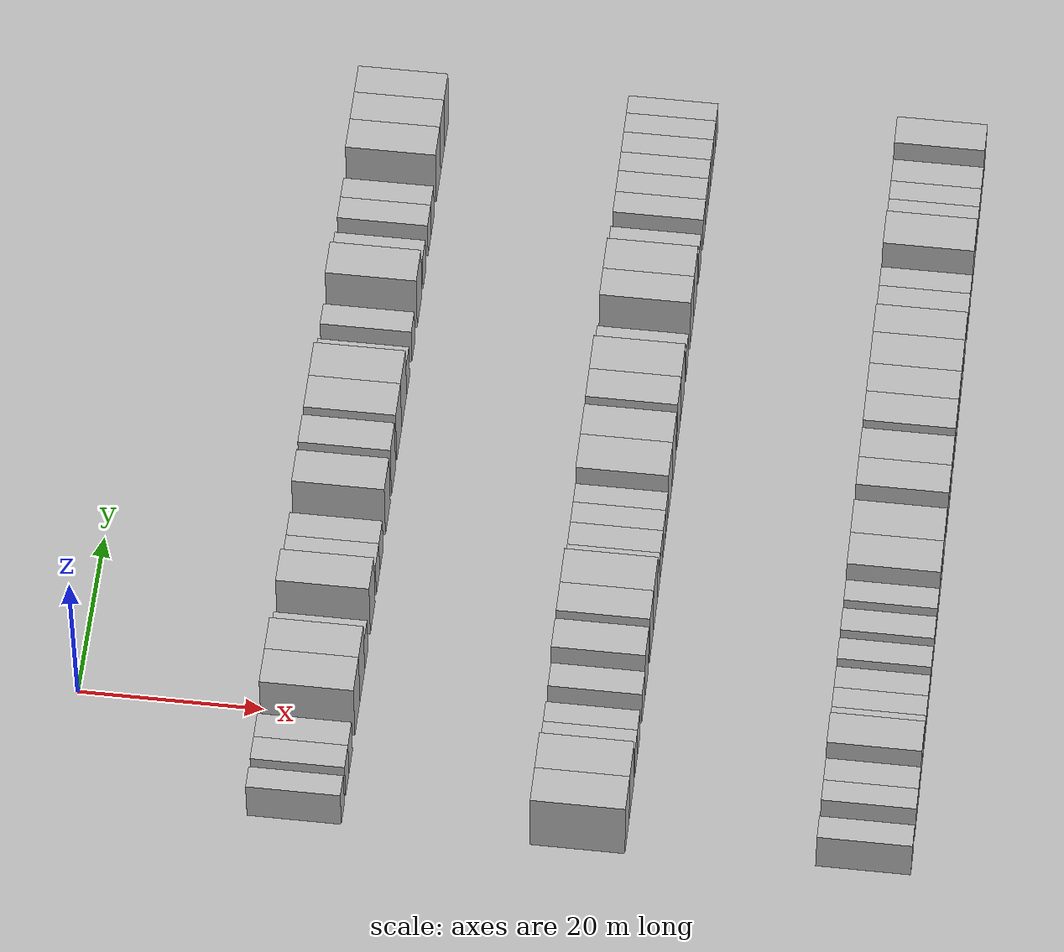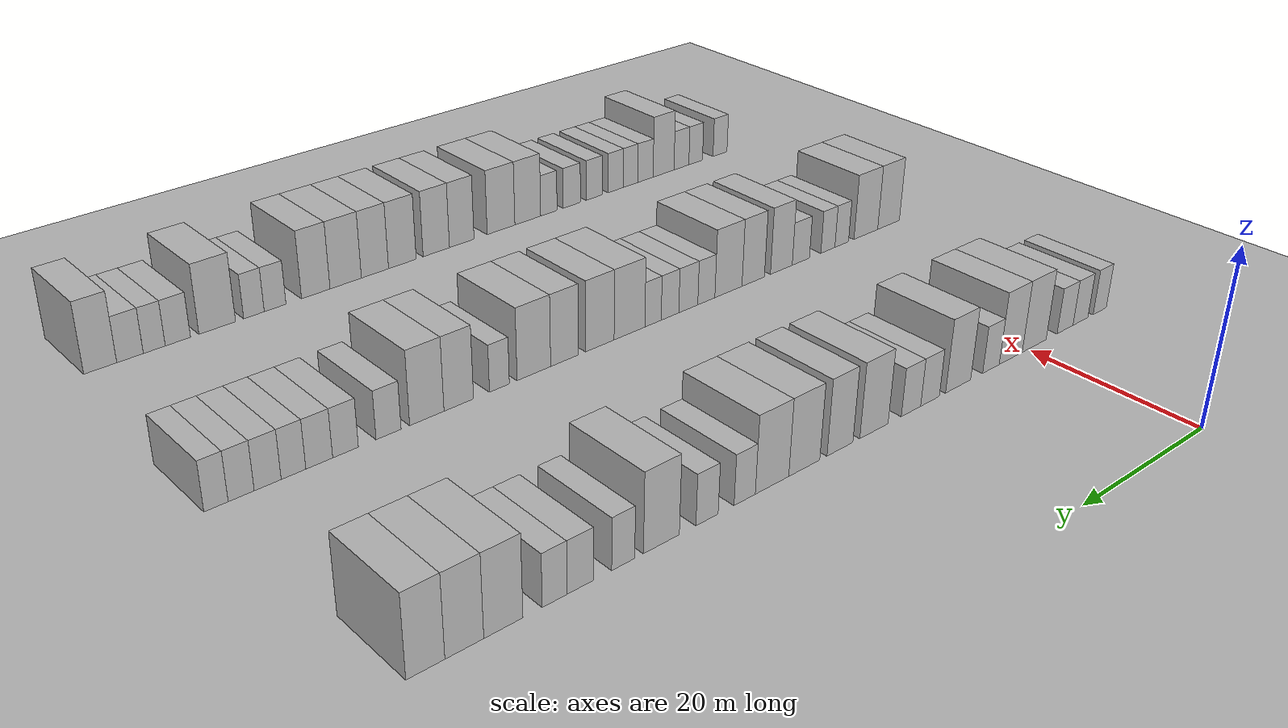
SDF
<sdf version="1.6">
 <world name="default">
  <include><name>ground_plane_1</name><uri>model://HANNAS_ground_plane</uri></include>
  <include>
   <name>ground_plane_2</name>
   <uri>model://HANNAS_ground_plane</uri>
   <pose>100 0 0  0 0 0</pose>
  </include>
  <model name="building_107">
   <static>1</static>
   <pose>25.0000 -12.4757 0 0.000000 0.000000 0.000000</pose>
   <link name="link">
    <pose>0 0 3.00 0 0 0</pose>
    <collision name="collision"><geometry><box><size>10.0000 2.5385 6.0000</size></box></geometry></collision>
    <visual name="visual">
     <cast_shadows>0</cast_shadows>
     <geometry><box><size>10.0000 2.5385 6.0000</size></box></geometry>
     <material>
      <script>
       <uri>model://HANNAS_wall/materials/scripts</uri>
       <uri>model://HANNAS_wall/materials/textures</uri>
       <name>vrc/HANNAS_wall</name>
      </script>
     </material>
    </visual>
   </link>
  </model>
  <model name="building_108">
   <static>1</static>
   <pose>25.0000 -8.8002 0 0.000000 0.000000 0.000000</pose>
   <link name="link">
    <pose>0 0 3.00 0 0 0</pose>
    <collision name="collision"><geometry><box><size>10.0000 2.8124 6.0000</size></box></geometry></collision>
    <visual name="visual">
     <cast_shadows>0</cast_shadows>
     <geometry><box><size>10.0000 2.8124 6.0000</size></box></geometry>
     <material>
      <script>
       <uri>model://HANNAS_wall/materials/scripts</uri>
       <uri>model://HANNAS_wall/materials/textures</uri>
       <name>vrc/HANNAS_wall</name>
      </script>
     </material>
    </visual>
   </link>
  </model>
  <model name="building_109">
   <static>1</static>
   <pose>25.0000 -5.9293 0 0.000000 0.000000 0.000000</pose>
   <link name="link">
    <pose>0 0 3.00 0 0 0</pose>
    <collision name="collision"><geometry><box><size>10.0000 2.9295 6.0000</size></box></geometry></collision>
    <visual name="visual">
     <cast_shadows>0</cast_shadows>
     <geometry><box><size>10.0000 2.9295 6.0000</size></box></geometry>
     <material>
      <script>
       <uri>model://HANNAS_wall/materials/scripts</uri>
       <uri>model://HANNAS_wall/materials/textures</uri>
       <name>vrc/HANNAS_wall</name>
      </script>
     </material>
    </visual>
   </link>
  </model>
  <model name="building_110">
   <static>1</static>
   <pose>25.0000 -0.3346 0 0.000000 0.000000 0.000000</pose>
   <link name="link">
    <pose>0 0 4.50 0 0 0</pose>
    <collision name="collision"><geometry><box><size>10.0000 4.2599 9.0000</size></box></geometry></collision>
    <visual name="visual">
     <cast_shadows>0</cast_shadows>
     <geometry><box><size>10.0000 4.2599 9.0000</size></box></geometry>
     <material>
      <script>
       <uri>model://HANNAS_wall/materials/scripts</uri>
       <uri>model://HANNAS_wall/materials/textures</uri>
       <name>vrc/HANNAS_wall</name>
      </script>
     </material>
    </visual>
   </link>
  </model>
  <model name="building_111">
   <static>1</static>
   <pose>25.0000 3.7814 0 0.000000 0.000000 0.000000</pose>
   <link name="link">
    <pose>0 0 4.50 0 0 0</pose>
    <collision name="collision"><geometry><box><size>10.0000 3.9721 9.0000</size></box></geometry></collision>
    <visual name="visual">
     <cast_shadows>0</cast_shadows>
     <geometry><box><size>10.0000 3.9721 9.0000</size></box></geometry>
     <material>
      <script>
       <uri>model://HANNAS_wall/materials/scripts</uri>
       <uri>model://HANNAS_wall/materials/textures</uri>
       <name>vrc/HANNAS_wall</name>
      </script>
     </material>
    </visual>
   </link>
  </model>
  <model name="building_112">
   <static>1</static>
   <pose>25.0000 7.1652 0 0.000000 0.000000 0.000000</pose>
   <link name="link">
    <pose>0 0 3.00 0 0 0</pose>
    <collision name="collision"><geometry><box><size>10.0000 2.7954 6.0000</size></box></geometry></collision>
    <visual name="visual">
     <cast_shadows>0</cast_shadows>
     <geometry><box><size>10.0000 2.7954 6.0000</size></box></geometry>
     <material>
      <script>
       <uri>model://HANNAS_wall/materials/scripts</uri>
       <uri>model://HANNAS_wall/materials/textures</uri>
       <name>vrc/HANNAS_wall</name>
      </script>
     </material>
    </visual>
   </link>
  </model>
  <model name="building_113">
   <static>1</static>
   <pose>25.0000 12.5985 0 0.000000 0.000000 0.000000</pose>
   <link name="link">
    <pose>0 0 4.50 0 0 0</pose>
    <collision name="collision"><geometry><box><size>10.0000 4.0714 9.0000</size></box></geometry></collision>
    <visual name="visual">
     <cast_shadows>0</cast_shadows>
     <geometry><box><size>10.0000 4.0714 9.0000</size></box></geometry>
     <material>
      <script>
       <uri>model://HANNAS_wall/materials/scripts</uri>
       <uri>model://HANNAS_wall/materials/textures</uri>
       <name>vrc/HANNAS_wall</name>
      </script>
     </material>
    </visual>
   </link>
  </model>
  <model name="building_114">
   <static>1</static>
   <pose>25.0000 17.0982 0 0.000000 0.000000 0.000000</pose>
   <link name="link">
    <pose>0 0 3.00 0 0 0</pose>
    <collision name="collision"><geometry><box><size>10.0000 2.9280 6.0000</size></box></geometry></collision>
    <visual name="visual">
     <cast_shadows>0</cast_shadows>
     <geometry><box><size>10.0000 2.9280 6.0000</size></box></geometry>
     <material>
      <script>
       <uri>model://HANNAS_wall/materials/scripts</uri>
       <uri>model://HANNAS_wall/materials/textures</uri>
       <name>vrc/HANNAS_wall</name>
      </script>
     </material>
    </visual>
   </link>
  </model>
  <model name="building_115">
   <static>1</static>
   <pose>25.0000 20.0472 0 0.000000 0.000000 0.000000</pose>
   <link name="link">
    <pose>0 0 3.00 0 0 0</pose>
    <collision name="collision"><geometry><box><size>10.0000 2.9701 6.0000</size></box></geometry></collision>
    <visual name="visual">
     <cast_shadows>0</cast_shadows>
     <geometry><box><size>10.0000 2.9701 6.0000</size></box></geometry>
     <material>
      <script>
       <uri>model://HANNAS_wall/materials/scripts</uri>
       <uri>model://HANNAS_wall/materials/textures</uri>
       <name>vrc/HANNAS_wall</name>
      </script>
     </material>
    </visual>
   </link>
  </model>
  <model name="building_116">
   <static>1</static>
   <pose>25.0000 25.6162 0 0.000000 0.000000 0.000000</pose>
   <link name="link">
    <pose>0 0 4.50 0 0 0</pose>
    <collision name="collision"><geometry><box><size>10.0000 4.1679 9.0000</size></box></geometry></collision>
    <visual name="visual">
     <cast_shadows>0</cast_shadows>
     <geometry><box><size>10.0000 4.1679 9.0000</size></box></geometry>
     <material>
      <script>
       <uri>model://HANNAS_wall/materials/scripts</uri>
       <uri>model://HANNAS_wall/materials/textures</uri>
       <name>vrc/HANNAS_wall</name>
      </script>
     </material>
    </visual>
   </link>
  </model>
  <model name="building_117">
   <static>1</static>
   <pose>25.0000 30.5368 0 0.000000 0.000000 0.000000</pose>
   <link name="link">
    <pose>0 0 4.50 0 0 0</pose>
    <collision name="collision"><geometry><box><size>10.0000 3.6731 9.0000</size></box></geometry></collision>
    <visual name="visual">
     <cast_shadows>0</cast_shadows>
     <geometry><box><size>10.0000 3.6731 9.0000</size></box></geometry>
     <material>
      <script>
       <uri>model://HANNAS_wall/materials/scripts</uri>
       <uri>model://HANNAS_wall/materials/textures</uri>
       <name>vrc/HANNAS_wall</name>
      </script>
     </material>
    </visual>
   </link>
  </model>
  <model name="building_118">
   <static>1</static>
   <pose>25.0000 35.4929 0 0.000000 0.000000 0.000000</pose>
   <link name="link">
    <pose>0 0 4.50 0 0 0</pose>
    <collision name="collision"><geometry><box><size>10.0000 4.2391 9.0000</size></box></geometry></collision>
    <visual name="visual">
     <cast_shadows>0</cast_shadows>
     <geometry><box><size>10.0000 4.2391 9.0000</size></box></geometry>
     <material>
      <script>
       <uri>model://HANNAS_wall/materials/scripts</uri>
       <uri>model://HANNAS_wall/materials/textures</uri>
       <name>vrc/HANNAS_wall</name>
      </script>
     </material>
    </visual>
   </link>
  </model>
  <model name="building_119">
   <static>1</static>
   <pose>25.0000 39.8196 0 0.000000 0.000000 0.000000</pose>
   <link name="link">
    <pose>0 0 4.50 0 0 0</pose>
    <collision name="collision"><geometry><box><size>10.0000 4.4143 9.0000</size></box></geometry></collision>
    <visual name="visual">
     <cast_shadows>0</cast_shadows>
     <geometry><box><size>10.0000 4.4143 9.0000</size></box></geometry>
     <material>
      <script>
       <uri>model://HANNAS_wall/materials/scripts</uri>
       <uri>model://HANNAS_wall/materials/textures</uri>
       <name>vrc/HANNAS_wall</name>
      </script>
     </material>
    </visual>
   </link>
  </model>
  <model name="building_120">
   <static>1</static>
   <pose>25.0000 43.3862 0 0.000000 0.000000 0.000000</pose>
   <link name="link">
    <pose>0 0 3.00 0 0 0</pose>
    <collision name="collision"><geometry><box><size>10.0000 2.7190 6.0000</size></box></geometry></collision>
    <visual name="visual">
     <cast_shadows>0</cast_shadows>
     <geometry><box><size>10.0000 2.7190 6.0000</size></box></geometry>
     <material>
      <script>
       <uri>model://HANNAS_wall/materials/scripts</uri>
       <uri>model://HANNAS_wall/materials/textures</uri>
       <name>vrc/HANNAS_wall</name>
      </script>
     </material>
    </visual>
   </link>
  </model>
  <model name="building_121">
   <static>1</static>
   <pose>25.0000 48.1140 0 0.000000 0.000000 0.000000</pose>
   <link name="link">
    <pose>0 0 3.00 0 0 0</pose>
    <collision name="collision"><geometry><box><size>10.0000 2.7365 6.0000</size></box></geometry></collision>
    <visual name="visual">
     <cast_shadows>0</cast_shadows>
     <geometry><box><size>10.0000 2.7365 6.0000</size></box></geometry>
     <material>
      <script>
       <uri>model://HANNAS_wall/materials/scripts</uri>
       <uri>model://HANNAS_wall/materials/textures</uri>
       <name>vrc/HANNAS_wall</name>
      </script>
     </material>
    </visual>
   </link>
  </model>
  <model name="building_122">
   <static>1</static>
   <pose>25.0000 53.5939 0 0.000000 0.000000 0.000000</pose>
   <link name="link">
    <pose>0 0 4.50 0 0 0</pose>
    <collision name="collision"><geometry><box><size>10.0000 4.2232 9.0000</size></box></geometry></collision>
    <visual name="visual">
     <cast_shadows>0</cast_shadows>
     <geometry><box><size>10.0000 4.2232 9.0000</size></box></geometry>
     <material>
      <script>
       <uri>model://HANNAS_wall/materials/scripts</uri>
       <uri>model://HANNAS_wall/materials/textures</uri>
       <name>vrc/HANNAS_wall</name>
      </script>
     </material>
    </visual>
   </link>
  </model>
  <model name="building_123">
   <static>1</static>
   <pose>25.0000 58.0110 0 0.000000 0.000000 0.000000</pose>
   <link name="link">
    <pose>0 0 3.00 0 0 0</pose>
    <collision name="collision"><geometry><box><size>10.0000 2.6109 6.0000</size></box></geometry></collision>
    <visual name="visual">
     <cast_shadows>0</cast_shadows>
     <geometry><box><size>10.0000 2.6109 6.0000</size></box></geometry>
     <material>
      <script>
       <uri>model://HANNAS_wall/materials/scripts</uri>
       <uri>model://HANNAS_wall/materials/textures</uri>
       <name>vrc/HANNAS_wall</name>
      </script>
     </material>
    </visual>
   </link>
  </model>
  <model name="building_124">
   <static>1</static>
   <pose>25.0000 62.7577 0 0.000000 0.000000 0.000000</pose>
   <link name="link">
    <pose>0 0 3.00 0 0 0</pose>
    <collision name="collision"><geometry><box><size>10.0000 2.8825 6.0000</size></box></geometry></collision>
    <visual name="visual">
     <cast_shadows>0</cast_shadows>
     <geometry><box><size>10.0000 2.8825 6.0000</size></box></geometry>
     <material>
      <script>
       <uri>model://HANNAS_wall/materials/scripts</uri>
       <uri>model://HANNAS_wall/materials/textures</uri>
       <name>vrc/HANNAS_wall</name>
      </script>
     </material>
    </visual>
   </link>
  </model>
  <model name="building_125">
   <static>1</static>
   <pose>25.0000 65.5178 0 0.000000 0.000000 0.000000</pose>
   <link name="link">
    <pose>0 0 3.00 0 0 0</pose>
    <collision name="collision"><geometry><box><size>10.0000 2.6377 6.0000</size></box></geometry></collision>
    <visual name="visual">
     <cast_shadows>0</cast_shadows>
     <geometry><box><size>10.0000 2.6377 6.0000</size></box></geometry>
     <material>
      <script>
       <uri>model://HANNAS_wall/materials/scripts</uri>
       <uri>model://HANNAS_wall/materials/textures</uri>
       <name>vrc/HANNAS_wall</name>
      </script>
     </material>
    </visual>
   </link>
  </model>
  <model name="building_126">
   <static>1</static>
   <pose>25.0000 70.8127 0 0.000000 0.000000 0.000000</pose>
   <link name="link">
    <pose>0 0 4.50 0 0 0</pose>
    <collision name="collision"><geometry><box><size>10.0000 3.9521 9.0000</size></box></geometry></collision>
    <visual name="visual">
     <cast_shadows>0</cast_shadows>
     <geometry><box><size>10.0000 3.9521 9.0000</size></box></geometry>
     <material>
      <script>
       <uri>model://HANNAS_wall/materials/scripts</uri>
       <uri>model://HANNAS_wall/materials/textures</uri>
       <name>vrc/HANNAS_wall</name>
      </script>
     </material>
    </visual>
   </link>
  </model>
  <model name="building_127">
   <static>1</static>
   <pose>25.0000 74.6841 0 0.000000 0.000000 0.000000</pose>
   <link name="link">
    <pose>0 0 4.50 0 0 0</pose>
    <collision name="collision"><geometry><box><size>10.0000 3.7907 9.0000</size></box></geometry></collision>
    <visual name="visual">
     <cast_shadows>0</cast_shadows>
     <geometry><box><size>10.0000 3.7907 9.0000</size></box></geometry>
     <material>
      <script>
       <uri>model://HANNAS_wall/materials/scripts</uri>
       <uri>model://HANNAS_wall/materials/textures</uri>
       <name>vrc/HANNAS_wall</name>
      </script>
     </material>
    </visual>
   </link>
  </model>
  <model name="building_128">
   <static>1</static>
   <pose>25.0000 78.4195 0 0.000000 0.000000 0.000000</pose>
   <link name="link">
    <pose>0 0 4.50 0 0 0</pose>
    <collision name="collision"><geometry><box><size>10.0000 3.6800 9.0000</size></box></geometry></collision>
    <visual name="visual">
     <cast_shadows>0</cast_shadows>
     <geometry><box><size>10.0000 3.6800 9.0000</size></box></geometry>
     <material>
      <script>
       <uri>model://HANNAS_wall/materials/scripts</uri>
       <uri>model://HANNAS_wall/materials/textures</uri>
       <name>vrc/HANNAS_wall</name>
      </script>
     </material>
    </visual>
   </link>
  </model>
  <model name="building_337">
   <static>1</static>
   <pose>55.0000 -11.9262 0 0.000000 0.000000 0.000000</pose>
   <link name="link">
    <pose>0 0 4.50 0 0 0</pose>
    <collision name="collision"><geometry><box><size>10.0000 4.1229 9.0000</size></box></geometry></collision>
    <visual name="visual">
     <cast_shadows>0</cast_shadows>
     <geometry><box><size>10.0000 4.1229 9.0000</size></box></geometry>
     <material>
      <script>
       <uri>model://HANNAS_wall/materials/scripts</uri>
       <uri>model://HANNAS_wall/materials/textures</uri>
       <name>vrc/HANNAS_wall</name>
      </script>
     </material>
    </visual>
   </link>
  </model>
  <model name="building_338">
   <static>1</static>
   <pose>55.0000 -7.6704 0 0.000000 0.000000 0.000000</pose>
   <link name="link">
    <pose>0 0 4.50 0 0 0</pose>
    <collision name="collision"><geometry><box><size>10.0000 4.3887 9.0000</size></box></geometry></collision>
    <visual name="visual">
     <cast_shadows>0</cast_shadows>
     <geometry><box><size>10.0000 4.3887 9.0000</size></box></geometry>
     <material>
      <script>
       <uri>model://HANNAS_wall/materials/scripts</uri>
       <uri>model://HANNAS_wall/materials/textures</uri>
       <name>vrc/HANNAS_wall</name>
      </script>
     </material>
    </visual>
   </link>
  </model>
  <model name="building_339">
   <static>1</static>
   <pose>55.0000 -3.2521 0 0.000000 0.000000 0.000000</pose>
   <link name="link">
    <pose>0 0 3.00 0 0 0</pose>
    <collision name="collision"><geometry><box><size>10.0000 2.4480 6.0000</size></box></geometry></collision>
    <visual name="visual">
     <cast_shadows>0</cast_shadows>
     <geometry><box><size>10.0000 2.4480 6.0000</size></box></geometry>
     <material>
      <script>
       <uri>model://HANNAS_wall/materials/scripts</uri>
       <uri>model://HANNAS_wall/materials/textures</uri>
       <name>vrc/HANNAS_wall</name>
      </script>
     </material>
    </visual>
   </link>
  </model>
  <model name="building_340">
   <static>1</static>
   <pose>55.0000 -0.7804 0 0.000000 0.000000 0.000000</pose>
   <link name="link">
    <pose>0 0 3.00 0 0 0</pose>
    <collision name="collision"><geometry><box><size>10.0000 2.4955 6.0000</size></box></geometry></collision>
    <visual name="visual">
     <cast_shadows>0</cast_shadows>
     <geometry><box><size>10.0000 2.4955 6.0000</size></box></geometry>
     <material>
      <script>
       <uri>model://HANNAS_wall/materials/scripts</uri>
       <uri>model://HANNAS_wall/materials/textures</uri>
       <name>vrc/HANNAS_wall</name>
      </script>
     </material>
    </visual>
   </link>
  </model>
  <model name="building_341">
   <static>1</static>
   <pose>55.0000 3.9529 0 0.000000 0.000000 0.000000</pose>
   <link name="link">
    <pose>0 0 3.00 0 0 0</pose>
    <collision name="collision"><geometry><box><size>10.0000 2.9710 6.0000</size></box></geometry></collision>
    <visual name="visual">
     <cast_shadows>0</cast_shadows>
     <geometry><box><size>10.0000 2.9710 6.0000</size></box></geometry>
     <material>
      <script>
       <uri>model://HANNAS_wall/materials/scripts</uri>
       <uri>model://HANNAS_wall/materials/textures</uri>
       <name>vrc/HANNAS_wall</name>
      </script>
     </material>
    </visual>
   </link>
  </model>
  <model name="building_342">
   <static>1</static>
   <pose>55.0000 7.2754 0 0.000000 0.000000 0.000000</pose>
   <link name="link">
    <pose>0 0 4.50 0 0 0</pose>
    <collision name="collision"><geometry><box><size>10.0000 3.6740 9.0000</size></box></geometry></collision>
    <visual name="visual">
     <cast_shadows>0</cast_shadows>
     <geometry><box><size>10.0000 3.6740 9.0000</size></box></geometry>
     <material>
      <script>
       <uri>model://HANNAS_wall/materials/scripts</uri>
       <uri>model://HANNAS_wall/materials/textures</uri>
       <name>vrc/HANNAS_wall</name>
      </script>
     </material>
    </visual>
   </link>
  </model>
  <model name="building_343">
   <static>1</static>
   <pose>55.0000 11.9529 0 0.000000 0.000000 0.000000</pose>
   <link name="link">
    <pose>0 0 4.50 0 0 0</pose>
    <collision name="collision"><geometry><box><size>10.0000 3.6809 9.0000</size></box></geometry></collision>
    <visual name="visual">
     <cast_shadows>0</cast_shadows>
     <geometry><box><size>10.0000 3.6809 9.0000</size></box></geometry>
     <material>
      <script>
       <uri>model://HANNAS_wall/materials/scripts</uri>
       <uri>model://HANNAS_wall/materials/textures</uri>
       <name>vrc/HANNAS_wall</name>
      </script>
     </material>
    </visual>
   </link>
  </model>
  <model name="building_344">
   <static>1</static>
   <pose>55.0000 15.9605 0 0.000000 0.000000 0.000000</pose>
   <link name="link">
    <pose>0 0 4.50 0 0 0</pose>
    <collision name="collision"><geometry><box><size>10.0000 4.3343 9.0000</size></box></geometry></collision>
    <visual name="visual">
     <cast_shadows>0</cast_shadows>
     <geometry><box><size>10.0000 4.3343 9.0000</size></box></geometry>
     <material>
      <script>
       <uri>model://HANNAS_wall/materials/scripts</uri>
       <uri>model://HANNAS_wall/materials/textures</uri>
       <name>vrc/HANNAS_wall</name>
      </script>
     </material>
    </visual>
   </link>
  </model>
  <model name="building_345">
   <static>1</static>
   <pose>55.0000 19.4588 0 0.000000 0.000000 0.000000</pose>
   <link name="link">
    <pose>0 0 3.00 0 0 0</pose>
    <collision name="collision"><geometry><box><size>10.0000 2.6622 6.0000</size></box></geometry></collision>
    <visual name="visual">
     <cast_shadows>0</cast_shadows>
     <geometry><box><size>10.0000 2.6622 6.0000</size></box></geometry>
     <material>
      <script>
       <uri>model://HANNAS_wall/materials/scripts</uri>
       <uri>model://HANNAS_wall/materials/textures</uri>
       <name>vrc/HANNAS_wall</name>
      </script>
     </material>
    </visual>
   </link>
  </model>
  <model name="building_346">
   <static>1</static>
   <pose>55.0000 22.2457 0 0.000000 0.000000 0.000000</pose>
   <link name="link">
    <pose>0 0 3.00 0 0 0</pose>
    <collision name="collision"><geometry><box><size>10.0000 2.9117 6.0000</size></box></geometry></collision>
    <visual name="visual">
     <cast_shadows>0</cast_shadows>
     <geometry><box><size>10.0000 2.9117 6.0000</size></box></geometry>
     <material>
      <script>
       <uri>model://HANNAS_wall/materials/scripts</uri>
       <uri>model://HANNAS_wall/materials/textures</uri>
       <name>vrc/HANNAS_wall</name>
      </script>
     </material>
    </visual>
   </link>
  </model>
  <model name="building_347">
   <static>1</static>
   <pose>55.0000 25.0259 0 0.000000 0.000000 0.000000</pose>
   <link name="link">
    <pose>0 0 3.00 0 0 0</pose>
    <collision name="collision"><geometry><box><size>10.0000 2.6487 6.0000</size></box></geometry></collision>
    <visual name="visual">
     <cast_shadows>0</cast_shadows>
     <geometry><box><size>10.0000 2.6487 6.0000</size></box></geometry>
     <material>
      <script>
       <uri>model://HANNAS_wall/materials/scripts</uri>
       <uri>model://HANNAS_wall/materials/textures</uri>
       <name>vrc/HANNAS_wall</name>
      </script>
     </material>
    </visual>
   </link>
  </model>
  <model name="building_348">
   <static>1</static>
   <pose>55.0000 27.5573 0 0.000000 0.000000 0.000000</pose>
   <link name="link">
    <pose>0 0 3.00 0 0 0</pose>
    <collision name="collision"><geometry><box><size>10.0000 2.4140 6.0000</size></box></geometry></collision>
    <visual name="visual">
     <cast_shadows>0</cast_shadows>
     <geometry><box><size>10.0000 2.4140 6.0000</size></box></geometry>
     <material>
      <script>
       <uri>model://HANNAS_wall/materials/scripts</uri>
       <uri>model://HANNAS_wall/materials/textures</uri>
       <name>vrc/HANNAS_wall</name>
      </script>
     </material>
    </visual>
   </link>
  </model>
  <model name="building_349">
   <static>1</static>
   <pose>55.0000 30.9869 0 0.000000 0.000000 0.000000</pose>
   <link name="link">
    <pose>0 0 4.50 0 0 0</pose>
    <collision name="collision"><geometry><box><size>10.0000 4.4452 9.0000</size></box></geometry></collision>
    <visual name="visual">
     <cast_shadows>0</cast_shadows>
     <geometry><box><size>10.0000 4.4452 9.0000</size></box></geometry>
     <material>
      <script>
       <uri>model://HANNAS_wall/materials/scripts</uri>
       <uri>model://HANNAS_wall/materials/textures</uri>
       <name>vrc/HANNAS_wall</name>
      </script>
     </material>
    </visual>
   </link>
  </model>
  <model name="building_350">
   <static>1</static>
   <pose>55.0000 35.2058 0 0.000000 0.000000 0.000000</pose>
   <link name="link">
    <pose>0 0 4.50 0 0 0</pose>
    <collision name="collision"><geometry><box><size>10.0000 3.9926 9.0000</size></box></geometry></collision>
    <visual name="visual">
     <cast_shadows>0</cast_shadows>
     <geometry><box><size>10.0000 3.9926 9.0000</size></box></geometry>
     <material>
      <script>
       <uri>model://HANNAS_wall/materials/scripts</uri>
       <uri>model://HANNAS_wall/materials/textures</uri>
       <name>vrc/HANNAS_wall</name>
      </script>
     </material>
    </visual>
   </link>
  </model>
  <model name="building_351">
   <static>1</static>
   <pose>55.0000 40.0824 0 0.000000 0.000000 0.000000</pose>
   <link name="link">
    <pose>0 0 4.50 0 0 0</pose>
    <collision name="collision"><geometry><box><size>10.0000 3.7606 9.0000</size></box></geometry></collision>
    <visual name="visual">
     <cast_shadows>0</cast_shadows>
     <geometry><box><size>10.0000 3.7606 9.0000</size></box></geometry>
     <material>
      <script>
       <uri>model://HANNAS_wall/materials/scripts</uri>
       <uri>model://HANNAS_wall/materials/textures</uri>
       <name>vrc/HANNAS_wall</name>
      </script>
     </material>
    </visual>
   </link>
  </model>
  <model name="building_352">
   <static>1</static>
   <pose>55.0000 44.1747 0 0.000000 0.000000 0.000000</pose>
   <link name="link">
    <pose>0 0 4.50 0 0 0</pose>
    <collision name="collision"><geometry><box><size>10.0000 4.4240 9.0000</size></box></geometry></collision>
    <visual name="visual">
     <cast_shadows>0</cast_shadows>
     <geometry><box><size>10.0000 4.4240 9.0000</size></box></geometry>
     <material>
      <script>
       <uri>model://HANNAS_wall/materials/scripts</uri>
       <uri>model://HANNAS_wall/materials/textures</uri>
       <name>vrc/HANNAS_wall</name>
      </script>
     </material>
    </visual>
   </link>
  </model>
  <model name="building_353">
   <static>1</static>
   <pose>55.0000 48.6536 0 0.000000 0.000000 0.000000</pose>
   <link name="link">
    <pose>0 0 3.00 0 0 0</pose>
    <collision name="collision"><geometry><box><size>10.0000 2.5338 6.0000</size></box></geometry></collision>
    <visual name="visual">
     <cast_shadows>0</cast_shadows>
     <geometry><box><size>10.0000 2.5338 6.0000</size></box></geometry>
     <material>
      <script>
       <uri>model://HANNAS_wall/materials/scripts</uri>
       <uri>model://HANNAS_wall/materials/textures</uri>
       <name>vrc/HANNAS_wall</name>
      </script>
     </material>
    </visual>
   </link>
  </model>
  <model name="building_354">
   <static>1</static>
   <pose>55.0000 53.7335 0 0.000000 0.000000 0.000000</pose>
   <link name="link">
    <pose>0 0 4.50 0 0 0</pose>
    <collision name="collision"><geometry><box><size>10.0000 3.6260 9.0000</size></box></geometry></collision>
    <visual name="visual">
     <cast_shadows>0</cast_shadows>
     <geometry><box><size>10.0000 3.6260 9.0000</size></box></geometry>
     <material>
      <script>
       <uri>model://HANNAS_wall/materials/scripts</uri>
       <uri>model://HANNAS_wall/materials/textures</uri>
       <name>vrc/HANNAS_wall</name>
      </script>
     </material>
    </visual>
   </link>
  </model>
  <model name="building_355">
   <static>1</static>
   <pose>55.0000 57.5987 0 0.000000 0.000000 0.000000</pose>
   <link name="link">
    <pose>0 0 4.50 0 0 0</pose>
    <collision name="collision"><geometry><box><size>10.0000 4.1045 9.0000</size></box></geometry></collision>
    <visual name="visual">
     <cast_shadows>0</cast_shadows>
     <geometry><box><size>10.0000 4.1045 9.0000</size></box></geometry>
     <material>
      <script>
       <uri>model://HANNAS_wall/materials/scripts</uri>
       <uri>model://HANNAS_wall/materials/textures</uri>
       <name>vrc/HANNAS_wall</name>
      </script>
     </material>
    </visual>
   </link>
  </model>
  <model name="building_356">
   <static>1</static>
   <pose>55.0000 62.0982 0 0.000000 0.000000 0.000000</pose>
   <link name="link">
    <pose>0 0 3.00 0 0 0</pose>
    <collision name="collision"><geometry><box><size>10.0000 2.8943 6.0000</size></box></geometry></collision>
    <visual name="visual">
     <cast_shadows>0</cast_shadows>
     <geometry><box><size>10.0000 2.8943 6.0000</size></box></geometry>
     <material>
      <script>
       <uri>model://HANNAS_wall/materials/scripts</uri>
       <uri>model://HANNAS_wall/materials/textures</uri>
       <name>vrc/HANNAS_wall</name>
      </script>
     </material>
    </visual>
   </link>
  </model>
  <model name="building_357">
   <static>1</static>
   <pose>55.0000 66.9727 0 0.000000 0.000000 0.000000</pose>
   <link name="link">
    <pose>0 0 3.00 0 0 0</pose>
    <collision name="collision"><geometry><box><size>10.0000 2.8548 6.0000</size></box></geometry></collision>
    <visual name="visual">
     <cast_shadows>0</cast_shadows>
     <geometry><box><size>10.0000 2.8548 6.0000</size></box></geometry>
     <material>
      <script>
       <uri>model://HANNAS_wall/materials/scripts</uri>
       <uri>model://HANNAS_wall/materials/textures</uri>
       <name>vrc/HANNAS_wall</name>
      </script>
     </material>
    </visual>
   </link>
  </model>
  <model name="building_358">
   <static>1</static>
   <pose>55.0000 69.8579 0 0.000000 0.000000 0.000000</pose>
   <link name="link">
    <pose>0 0 3.00 0 0 0</pose>
    <collision name="collision"><geometry><box><size>10.0000 2.9156 6.0000</size></box></geometry></collision>
    <visual name="visual">
     <cast_shadows>0</cast_shadows>
     <geometry><box><size>10.0000 2.9156 6.0000</size></box></geometry>
     <material>
      <script>
       <uri>model://HANNAS_wall/materials/scripts</uri>
       <uri>model://HANNAS_wall/materials/textures</uri>
       <name>vrc/HANNAS_wall</name>
      </script>
     </material>
    </visual>
   </link>
  </model>
  <model name="building_359">
   <static>1</static>
   <pose>55.0000 72.6265 0 0.000000 0.000000 0.000000</pose>
   <link name="link">
    <pose>0 0 3.00 0 0 0</pose>
    <collision name="collision"><geometry><box><size>10.0000 2.6215 6.0000</size></box></geometry></collision>
    <visual name="visual">
     <cast_shadows>0</cast_shadows>
     <geometry><box><size>10.0000 2.6215 6.0000</size></box></geometry>
     <material>
      <script>
       <uri>model://HANNAS_wall/materials/scripts</uri>
       <uri>model://HANNAS_wall/materials/textures</uri>
       <name>vrc/HANNAS_wall</name>
      </script>
     </material>
    </visual>
   </link>
  </model>
  <model name="building_360">
   <static>1</static>
   <pose>55.0000 75.3402 0 0.000000 0.000000 0.000000</pose>
   <link name="link">
    <pose>0 0 3.00 0 0 0</pose>
    <collision name="collision"><geometry><box><size>10.0000 2.8059 6.0000</size></box></geometry></collision>
    <visual name="visual">
     <cast_shadows>0</cast_shadows>
     <geometry><box><size>10.0000 2.8059 6.0000</size></box></geometry>
     <material>
      <script>
       <uri>model://HANNAS_wall/materials/scripts</uri>
       <uri>model://HANNAS_wall/materials/textures</uri>
       <name>vrc/HANNAS_wall</name>
      </script>
     </material>
    </visual>
   </link>
  </model>
  <model name="building_361">
   <static>1</static>
   <pose>55.0000 78.0691 0 0.000000 0.000000 0.000000</pose>
   <link name="link">
    <pose>0 0 3.00 0 0 0</pose>
    <collision name="collision"><geometry><box><size>10.0000 2.6520 6.0000</size></box></geometry></collision>
    <visual name="visual">
     <cast_shadows>0</cast_shadows>
     <geometry><box><size>10.0000 2.6520 6.0000</size></box></geometry>
     <material>
      <script>
       <uri>model://HANNAS_wall/materials/scripts</uri>
       <uri>model://HANNAS_wall/materials/textures</uri>
       <name>vrc/HANNAS_wall</name>
      </script>
     </material>
    </visual>
   </link>
  </model>
  <model name="building_362">
   <static>1</static>
   <pose>55.0000 80.6098 0 0.000000 0.000000 0.000000</pose>
   <link name="link">
    <pose>0 0 3.00 0 0 0</pose>
    <collision name="collision"><geometry><box><size>10.0000 2.4295 6.0000</size></box></geometry></collision>
    <visual name="visual">
     <cast_shadows>0</cast_shadows>
     <geometry><box><size>10.0000 2.4295 6.0000</size></box></geometry>
     <material>
      <script>
       <uri>model://HANNAS_wall/materials/scripts</uri>
       <uri>model://HANNAS_wall/materials/textures</uri>
       <name>vrc/HANNAS_wall</name>
      </script>
     </material>
    </visual>
   </link>
  </model>
  <model name="building_574">
   <static>1</static>
   <pose>85.0000 -11.8818 0 0.000000 0.000000 0.000000</pose>
   <link name="link">
    <pose>0 0 3.00 0 0 0</pose>
    <collision name="collision"><geometry><box><size>10.0000 2.6752 6.0000</size></box></geometry></collision>
    <visual name="visual">
     <cast_shadows>0</cast_shadows>
     <geometry><box><size>10.0000 2.6752 6.0000</size></box></geometry>
     <material>
      <script>
       <uri>model://HANNAS_wall/materials/scripts</uri>
       <uri>model://HANNAS_wall/materials/textures</uri>
       <name>vrc/HANNAS_wall</name>
      </script>
     </material>
    </visual>
   </link>
  </model>
  <model name="building_575">
   <static>1</static>
   <pose>85.0000 -7.2737 0 0.000000 0.000000 0.000000</pose>
   <link name="link">
    <pose>0 0 3.00 0 0 0</pose>
    <collision name="collision"><geometry><box><size>10.0000 2.5411 6.0000</size></box></geometry></collision>
    <visual name="visual">
     <cast_shadows>0</cast_shadows>
     <geometry><box><size>10.0000 2.5411 6.0000</size></box></geometry>
     <material>
      <script>
       <uri>model://HANNAS_wall/materials/scripts</uri>
       <uri>model://HANNAS_wall/materials/textures</uri>
       <name>vrc/HANNAS_wall</name>
      </script>
     </material>
    </visual>
   </link>
  </model>
  <model name="building_576">
   <static>1</static>
   <pose>85.0000 -4.6324 0 0.000000 0.000000 0.000000</pose>
   <link name="link">
    <pose>0 0 3.00 0 0 0</pose>
    <collision name="collision"><geometry><box><size>10.0000 2.7413 6.0000</size></box></geometry></collision>
    <visual name="visual">
     <cast_shadows>0</cast_shadows>
     <geometry><box><size>10.0000 2.7413 6.0000</size></box></geometry>
     <material>
      <script>
       <uri>model://HANNAS_wall/materials/scripts</uri>
       <uri>model://HANNAS_wall/materials/textures</uri>
       <name>vrc/HANNAS_wall</name>
      </script>
     </material>
    </visual>
   </link>
  </model>
  <model name="building_577">
   <static>1</static>
   <pose>85.0000 -1.3688 0 0.000000 0.000000 0.000000</pose>
   <link name="link">
    <pose>0 0 4.50 0 0 0</pose>
    <collision name="collision"><geometry><box><size>10.0000 3.7860 9.0000</size></box></geometry></collision>
    <visual name="visual">
     <cast_shadows>0</cast_shadows>
     <geometry><box><size>10.0000 3.7860 9.0000</size></box></geometry>
     <material>
      <script>
       <uri>model://HANNAS_wall/materials/scripts</uri>
       <uri>model://HANNAS_wall/materials/textures</uri>
       <name>vrc/HANNAS_wall</name>
      </script>
     </material>
    </visual>
   </link>
  </model>
  <model name="building_578">
   <static>1</static>
   <pose>85.0000 1.8829 0 0.000000 0.000000 0.000000</pose>
   <link name="link">
    <pose>0 0 3.00 0 0 0</pose>
    <collision name="collision"><geometry><box><size>10.0000 2.7174 6.0000</size></box></geometry></collision>
    <visual name="visual">
     <cast_shadows>0</cast_shadows>
     <geometry><box><size>10.0000 2.7174 6.0000</size></box></geometry>
     <material>
      <script>
       <uri>model://HANNAS_wall/materials/scripts</uri>
       <uri>model://HANNAS_wall/materials/textures</uri>
       <name>vrc/HANNAS_wall</name>
      </script>
     </material>
    </visual>
   </link>
  </model>
  <model name="building_579">
   <static>1</static>
   <pose>85.0000 4.4968 0 0.000000 0.000000 0.000000</pose>
   <link name="link">
    <pose>0 0 3.00 0 0 0</pose>
    <collision name="collision"><geometry><box><size>10.0000 2.5104 6.0000</size></box></geometry></collision>
    <visual name="visual">
     <cast_shadows>0</cast_shadows>
     <geometry><box><size>10.0000 2.5104 6.0000</size></box></geometry>
     <material>
      <script>
       <uri>model://HANNAS_wall/materials/scripts</uri>
       <uri>model://HANNAS_wall/materials/textures</uri>
       <name>vrc/HANNAS_wall</name>
      </script>
     </material>
    </visual>
   </link>
  </model>
  <model name="building_580">
   <static>1</static>
   <pose>85.0000 7.0781 0 0.000000 0.000000 0.000000</pose>
   <link name="link">
    <pose>0 0 3.00 0 0 0</pose>
    <collision name="collision"><geometry><box><size>10.0000 2.6522 6.0000</size></box></geometry></collision>
    <visual name="visual">
     <cast_shadows>0</cast_shadows>
     <geometry><box><size>10.0000 2.6522 6.0000</size></box></geometry>
     <material>
      <script>
       <uri>model://HANNAS_wall/materials/scripts</uri>
       <uri>model://HANNAS_wall/materials/textures</uri>
       <name>vrc/HANNAS_wall</name>
      </script>
     </material>
    </visual>
   </link>
  </model>
  <model name="building_581">
   <static>1</static>
   <pose>85.0000 10.7480 0 0.000000 0.000000 0.000000</pose>
   <link name="link">
    <pose>0 0 3.00 0 0 0</pose>
    <collision name="collision"><geometry><box><size>10.0000 2.6876 6.0000</size></box></geometry></collision>
    <visual name="visual">
     <cast_shadows>0</cast_shadows>
     <geometry><box><size>10.0000 2.6876 6.0000</size></box></geometry>
     <material>
      <script>
       <uri>model://HANNAS_wall/materials/scripts</uri>
       <uri>model://HANNAS_wall/materials/textures</uri>
       <name>vrc/HANNAS_wall</name>
      </script>
     </material>
    </visual>
   </link>
  </model>
  <model name="building_582">
   <static>1</static>
   <pose>85.0000 14.5165 0 0.000000 0.000000 0.000000</pose>
   <link name="link">
    <pose>0 0 3.00 0 0 0</pose>
    <collision name="collision"><geometry><box><size>10.0000 2.8493 6.0000</size></box></geometry></collision>
    <visual name="visual">
     <cast_shadows>0</cast_shadows>
     <geometry><box><size>10.0000 2.8493 6.0000</size></box></geometry>
     <material>
      <script>
       <uri>model://HANNAS_wall/materials/scripts</uri>
       <uri>model://HANNAS_wall/materials/textures</uri>
       <name>vrc/HANNAS_wall</name>
      </script>
     </material>
    </visual>
   </link>
  </model>
  <model name="building_583">
   <static>1</static>
   <pose>85.0000 18.2648 0 0.000000 0.000000 0.000000</pose>
   <link name="link">
    <pose>0 0 3.00 0 0 0</pose>
    <collision name="collision"><geometry><box><size>10.0000 2.6473 6.0000</size></box></geometry></collision>
    <visual name="visual">
     <cast_shadows>0</cast_shadows>
     <geometry><box><size>10.0000 2.6473 6.0000</size></box></geometry>
     <material>
      <script>
       <uri>model://HANNAS_wall/materials/scripts</uri>
       <uri>model://HANNAS_wall/materials/textures</uri>
       <name>vrc/HANNAS_wall</name>
      </script>
     </material>
    </visual>
   </link>
  </model>
  <model name="building_584">
   <static>1</static>
   <pose>85.0000 21.6341 0 0.000000 0.000000 0.000000</pose>
   <link name="link">
    <pose>0 0 4.50 0 0 0</pose>
    <collision name="collision"><geometry><box><size>10.0000 4.0913 9.0000</size></box></geometry></collision>
    <visual name="visual">
     <cast_shadows>0</cast_shadows>
     <geometry><box><size>10.0000 4.0913 9.0000</size></box></geometry>
     <material>
      <script>
       <uri>model://HANNAS_wall/materials/scripts</uri>
       <uri>model://HANNAS_wall/materials/textures</uri>
       <name>vrc/HANNAS_wall</name>
      </script>
     </material>
    </visual>
   </link>
  </model>
  <model name="building_585">
   <static>1</static>
   <pose>85.0000 25.8238 0 0.000000 0.000000 0.000000</pose>
   <link name="link">
    <pose>0 0 4.50 0 0 0</pose>
    <collision name="collision"><geometry><box><size>10.0000 4.2882 9.0000</size></box></geometry></collision>
    <visual name="visual">
     <cast_shadows>0</cast_shadows>
     <geometry><box><size>10.0000 4.2882 9.0000</size></box></geometry>
     <material>
      <script>
       <uri>model://HANNAS_wall/materials/scripts</uri>
       <uri>model://HANNAS_wall/materials/textures</uri>
       <name>vrc/HANNAS_wall</name>
      </script>
     </material>
    </visual>
   </link>
  </model>
  <model name="building_586">
   <static>1</static>
   <pose>85.0000 31.8000 0 0.000000 0.000000 0.000000</pose>
   <link name="link">
    <pose>0 0 4.50 0 0 0</pose>
    <collision name="collision"><geometry><box><size>10.0000 3.6641 9.0000</size></box></geometry></collision>
    <visual name="visual">
     <cast_shadows>0</cast_shadows>
     <geometry><box><size>10.0000 3.6641 9.0000</size></box></geometry>
     <material>
      <script>
       <uri>model://HANNAS_wall/materials/scripts</uri>
       <uri>model://HANNAS_wall/materials/textures</uri>
       <name>vrc/HANNAS_wall</name>
      </script>
     </material>
    </visual>
   </link>
  </model>
  <model name="building_587">
   <static>1</static>
   <pose>85.0000 35.5557 0 0.000000 0.000000 0.000000</pose>
   <link name="link">
    <pose>0 0 4.50 0 0 0</pose>
    <collision name="collision"><geometry><box><size>10.0000 3.8473 9.0000</size></box></geometry></collision>
    <visual name="visual">
     <cast_shadows>0</cast_shadows>
     <geometry><box><size>10.0000 3.8473 9.0000</size></box></geometry>
     <material>
      <script>
       <uri>model://HANNAS_wall/materials/scripts</uri>
       <uri>model://HANNAS_wall/materials/textures</uri>
       <name>vrc/HANNAS_wall</name>
      </script>
     </material>
    </visual>
   </link>
  </model>
  <model name="building_588">
   <static>1</static>
   <pose>85.0000 40.4319 0 0.000000 0.000000 0.000000</pose>
   <link name="link">
    <pose>0 0 4.50 0 0 0</pose>
    <collision name="collision"><geometry><box><size>10.0000 3.9052 9.0000</size></box></geometry></collision>
    <visual name="visual">
     <cast_shadows>0</cast_shadows>
     <geometry><box><size>10.0000 3.9052 9.0000</size></box></geometry>
     <material>
      <script>
       <uri>model://HANNAS_wall/materials/scripts</uri>
       <uri>model://HANNAS_wall/materials/textures</uri>
       <name>vrc/HANNAS_wall</name>
      </script>
     </material>
    </visual>
   </link>
  </model>
  <model name="building_589">
   <static>1</static>
   <pose>85.0000 44.2595 0 0.000000 0.000000 0.000000</pose>
   <link name="link">
    <pose>0 0 4.50 0 0 0</pose>
    <collision name="collision"><geometry><box><size>10.0000 3.7499 9.0000</size></box></geometry></collision>
    <visual name="visual">
     <cast_shadows>0</cast_shadows>
     <geometry><box><size>10.0000 3.7499 9.0000</size></box></geometry>
     <material>
      <script>
       <uri>model://HANNAS_wall/materials/scripts</uri>
       <uri>model://HANNAS_wall/materials/textures</uri>
       <name>vrc/HANNAS_wall</name>
      </script>
     </material>
    </visual>
   </link>
  </model>
  <model name="building_590">
   <static>1</static>
   <pose>85.0000 48.2479 0 0.000000 0.000000 0.000000</pose>
   <link name="link">
    <pose>0 0 4.50 0 0 0</pose>
    <collision name="collision"><geometry><box><size>10.0000 4.2269 9.0000</size></box></geometry></collision>
    <visual name="visual">
     <cast_shadows>0</cast_shadows>
     <geometry><box><size>10.0000 4.2269 9.0000</size></box></geometry>
     <material>
      <script>
       <uri>model://HANNAS_wall/materials/scripts</uri>
       <uri>model://HANNAS_wall/materials/textures</uri>
       <name>vrc/HANNAS_wall</name>
      </script>
     </material>
    </visual>
   </link>
  </model>
  <model name="building_591">
   <static>1</static>
   <pose>85.0000 52.2317 0 0.000000 0.000000 0.000000</pose>
   <link name="link">
    <pose>0 0 4.50 0 0 0</pose>
    <collision name="collision"><geometry><box><size>10.0000 3.7408 9.0000</size></box></geometry></collision>
    <visual name="visual">
     <cast_shadows>0</cast_shadows>
     <geometry><box><size>10.0000 3.7408 9.0000</size></box></geometry>
     <material>
      <script>
       <uri>model://HANNAS_wall/materials/scripts</uri>
       <uri>model://HANNAS_wall/materials/textures</uri>
       <name>vrc/HANNAS_wall</name>
      </script>
     </material>
    </visual>
   </link>
  </model>
  <model name="building_592">
   <static>1</static>
   <pose>85.0000 57.4829 0 0.000000 0.000000 0.000000</pose>
   <link name="link">
    <pose>0 0 3.00 0 0 0</pose>
    <collision name="collision"><geometry><box><size>10.0000 2.7615 6.0000</size></box></geometry></collision>
    <visual name="visual">
     <cast_shadows>0</cast_shadows>
     <geometry><box><size>10.0000 2.7615 6.0000</size></box></geometry>
     <material>
      <script>
       <uri>model://HANNAS_wall/materials/scripts</uri>
       <uri>model://HANNAS_wall/materials/textures</uri>
       <name>vrc/HANNAS_wall</name>
      </script>
     </material>
    </visual>
   </link>
  </model>
  <model name="building_593">
   <static>1</static>
   <pose>85.0000 60.1440 0 0.000000 0.000000 0.000000</pose>
   <link name="link">
    <pose>0 0 3.00 0 0 0</pose>
    <collision name="collision"><geometry><box><size>10.0000 2.5608 6.0000</size></box></geometry></collision>
    <visual name="visual">
     <cast_shadows>0</cast_shadows>
     <geometry><box><size>10.0000 2.5608 6.0000</size></box></geometry>
     <material>
      <script>
       <uri>model://HANNAS_wall/materials/scripts</uri>
       <uri>model://HANNAS_wall/materials/textures</uri>
       <name>vrc/HANNAS_wall</name>
      </script>
     </material>
    </visual>
   </link>
  </model>
  <model name="building_594">
   <static>1</static>
   <pose>85.0000 64.6385 0 0.000000 0.000000 0.000000</pose>
   <link name="link">
    <pose>0 0 4.50 0 0 0</pose>
    <collision name="collision"><geometry><box><size>10.0000 4.4281 9.0000</size></box></geometry></collision>
    <visual name="visual">
     <cast_shadows>0</cast_shadows>
     <geometry><box><size>10.0000 4.4281 9.0000</size></box></geometry>
     <material>
      <script>
       <uri>model://HANNAS_wall/materials/scripts</uri>
       <uri>model://HANNAS_wall/materials/textures</uri>
       <name>vrc/HANNAS_wall</name>
      </script>
     </material>
    </visual>
   </link>
  </model>
  <model name="building_595">
   <static>1</static>
   <pose>85.0000 69.3284 0 0.000000 0.000000 0.000000</pose>
   <link name="link">
    <pose>0 0 3.00 0 0 0</pose>
    <collision name="collision"><geometry><box><size>10.0000 2.9518 6.0000</size></box></geometry></collision>
    <visual name="visual">
     <cast_shadows>0</cast_shadows>
     <geometry><box><size>10.0000 2.9518 6.0000</size></box></geometry>
     <material>
      <script>
       <uri>model://HANNAS_wall/materials/scripts</uri>
       <uri>model://HANNAS_wall/materials/textures</uri>
       <name>vrc/HANNAS_wall</name>
      </script>
     </material>
    </visual>
   </link>
  </model>
  <model name="building_596">
   <static>1</static>
   <pose>85.0000 72.0615 0 0.000000 0.000000 0.000000</pose>
   <link name="link">
    <pose>0 0 3.00 0 0 0</pose>
    <collision name="collision"><geometry><box><size>10.0000 2.5145 6.0000</size></box></geometry></collision>
    <visual name="visual">
     <cast_shadows>0</cast_shadows>
     <geometry><box><size>10.0000 2.5145 6.0000</size></box></geometry>
     <material>
      <script>
       <uri>model://HANNAS_wall/materials/scripts</uri>
       <uri>model://HANNAS_wall/materials/textures</uri>
       <name>vrc/HANNAS_wall</name>
      </script>
     </material>
    </visual>
   </link>
  </model>
  <model name="building_597">
   <static>1</static>
   <pose>85.0000 74.8171 0 0.000000 0.000000 0.000000</pose>
   <link name="link">
    <pose>0 0 3.00 0 0 0</pose>
    <collision name="collision"><geometry><box><size>10.0000 2.9966 6.0000</size></box></geometry></collision>
    <visual name="visual">
     <cast_shadows>0</cast_shadows>
     <geometry><box><size>10.0000 2.9966 6.0000</size></box></geometry>
     <material>
      <script>
       <uri>model://HANNAS_wall/materials/scripts</uri>
       <uri>model://HANNAS_wall/materials/textures</uri>
       <name>vrc/HANNAS_wall</name>
      </script>
     </material>
    </visual>
   </link>
  </model>
  <model name="building_598">
   <static>1</static>
   <pose>85.0000 78.1384 0 0.000000 0.000000 0.000000</pose>
   <link name="link">
    <pose>0 0 4.50 0 0 0</pose>
    <collision name="collision"><geometry><box><size>10.0000 3.6460 9.0000</size></box></geometry></collision>
    <visual name="visual">
     <cast_shadows>0</cast_shadows>
     <geometry><box><size>10.0000 3.6460 9.0000</size></box></geometry>
     <material>
      <script>
       <uri>model://HANNAS_wall/materials/scripts</uri>
       <uri>model://HANNAS_wall/materials/textures</uri>
       <name>vrc/HANNAS_wall</name>
      </script>
     </material>
    </visual>
   </link>
  </model>
 </world>
</sdf>
